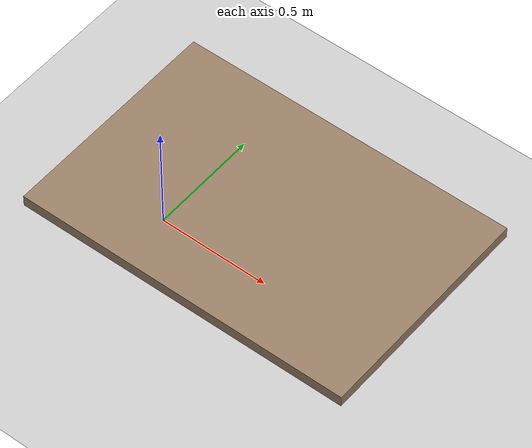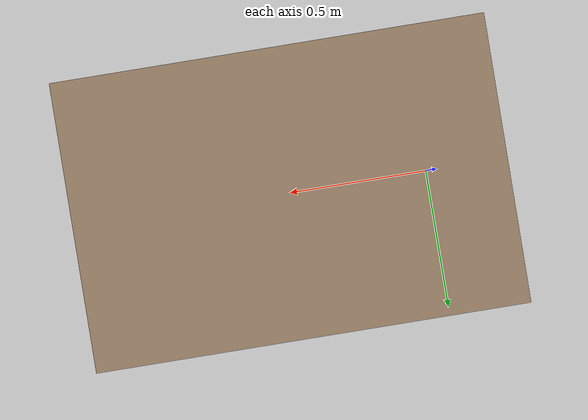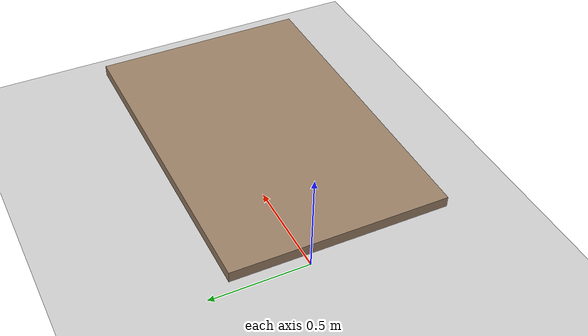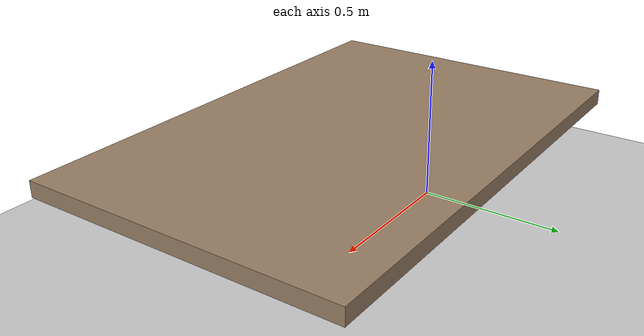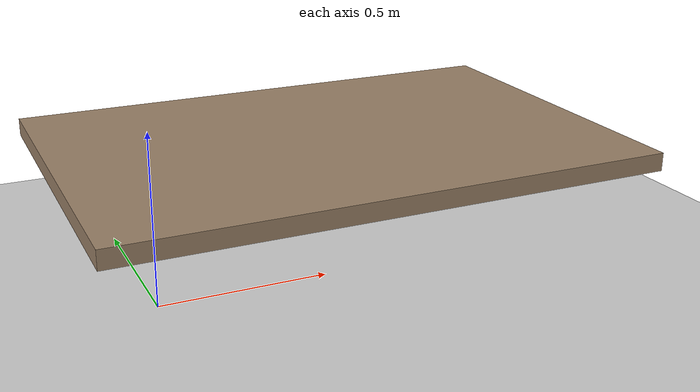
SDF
<?xml version="1.0" ?>
<sdf version="1.9">
  <world name="cable_insertion_world">

    <!-- Physics settings - smaller step for cable stability -->
    <physics name="default_physics" type="dart">
      <max_step_size>0.001</max_step_size>
      <real_time_factor>1.0</real_time_factor>
      <real_time_update_rate>1000</real_time_update_rate>
      <dart>
        <collision_detector>bullet</collision_detector>
        <solver>
          <solver_type>pgs</solver_type>
        </solver>
      </dart>
    </physics>

    <!-- gz-sim plugins -->
    <plugin filename="gz-sim-physics-system" name="gz::sim::systems::Physics"/>
    <plugin filename="gz-sim-user-commands-system" name="gz::sim::systems::UserCommands"/>
    <plugin filename="gz-sim-scene-broadcaster-system" name="gz::sim::systems::SceneBroadcaster"/>
    <plugin filename="gz-sim-contact-system" name="gz::sim::systems::Contact"/>
    <plugin filename="gz-sim-forcetorque-system" name="gz::sim::systems::ForceTorque"/>
    <plugin filename="gz-sim-sensors-system" name="gz::sim::systems::Sensors">
      <render_engine>ogre2</render_engine>
    </plugin>
    <plugin filename="gz-sim-imu-system" name="gz::sim::systems::Imu"/>

    <!-- Lighting -->
    <light type="directional" name="sun">
      <cast_shadows>true</cast_shadows>
      <pose>0 0 10 0 0 0</pose>
      <diffuse>0.8 0.8 0.8 1</diffuse>
      <specular>0.2 0.2 0.2 1</specular>
      <direction>-0.5 0.1 -0.9</direction>
    </light>

    <light type="directional" name="fill_light">
      <cast_shadows>false</cast_shadows>
      <pose>-5 5 5 0 0 0</pose>
      <diffuse>0.4 0.4 0.4 1</diffuse>
      <specular>0.1 0.1 0.1 1</specular>
      <direction>0.5 -0.5 -0.5</direction>
    </light>

    <!-- Ground plane -->
    <model name="ground_plane">
      <static>true</static>
      <link name="link">
        <collision name="collision">
          <geometry>
            <plane>
              <normal>0 0 1</normal>
              <size>100 100</size>
            </plane>
          </geometry>
          <surface>
            <friction>
              <ode>
                <mu>1.0</mu>
                <mu2>1.0</mu2>
              </ode>
            </friction>
            <contact>
              <collide_bitmask>0xffff</collide_bitmask>
            </contact>
          </surface>
        </collision>
        <visual name="visual">
          <geometry>
            <plane>
              <normal>0 0 1</normal>
              <size>100 100</size>
            </plane>
          </geometry>
          <material>
            <ambient>0.8 0.8 0.8 1</ambient>
            <diffuse>0.8 0.8 0.8 1</diffuse>
          </material>
        </visual>
      </link>
    </model>

    <!-- Table surface -->
    <model name="table">
      <static>true</static>
      <pose>0.5 0 0.4 0 0 0</pose>
      <link name="table_link">
        <visual name="visual">
          <geometry>
            <box>
              <size>1.5 1.0 0.05</size>
            </box>
          </geometry>
          <material>
            <ambient>0.6 0.5 0.4 1</ambient>
            <diffuse>0.6 0.5 0.4 1</diffuse>
          </material>
        </visual>
        <collision name="collision">
          <geometry>
            <box>
              <size>1.5 1.0 0.05</size>
            </box>
          </geometry>
          <surface>
            <friction>
              <ode>
                <mu>1.0</mu>
                <mu2>1.0</mu2>
              </ode>
            </friction>
            <contact>
              <collide_bitmask>0xffff</collide_bitmask>
            </contact>
          </surface>
        </collision>
      </link>
    </model>

    <!-- Gravity -->
    <gravity>0 0 -9.81</gravity>

  </world>
</sdf>
